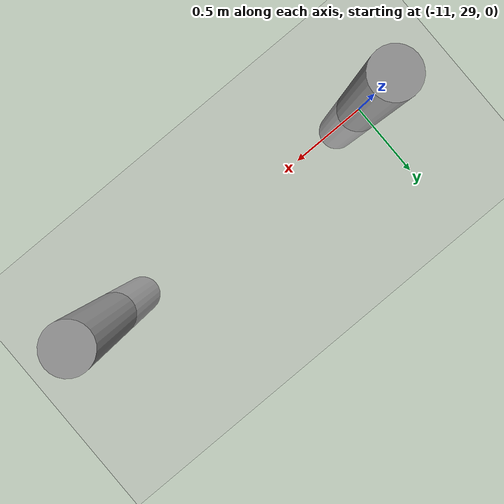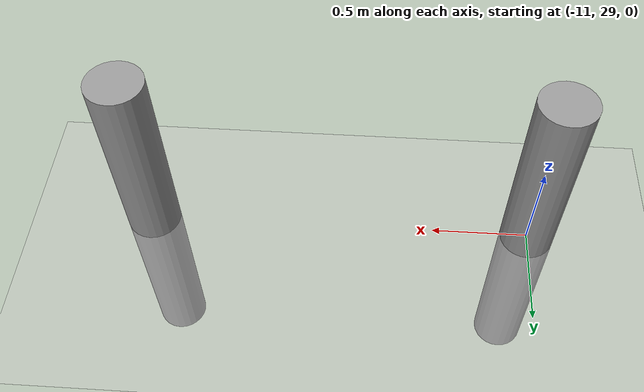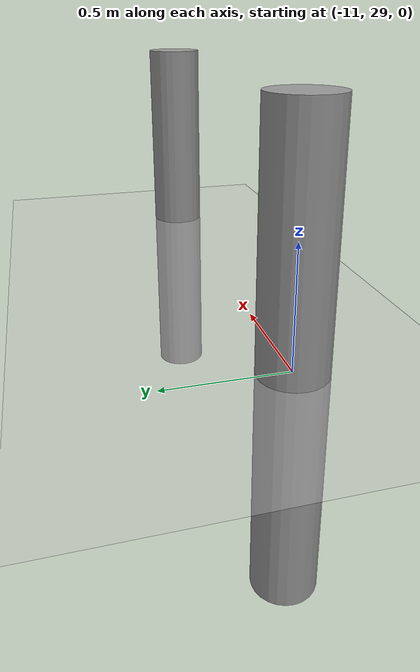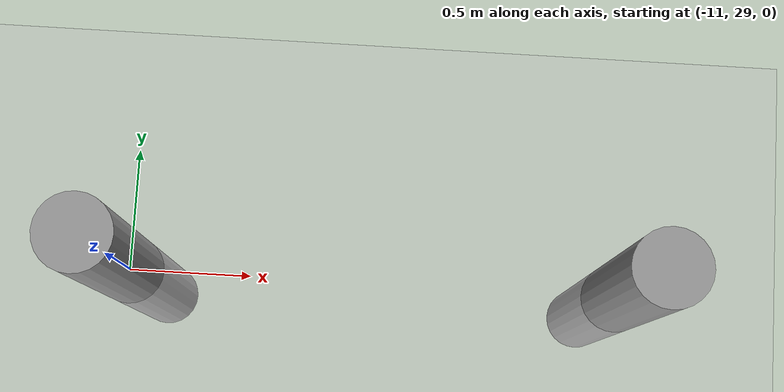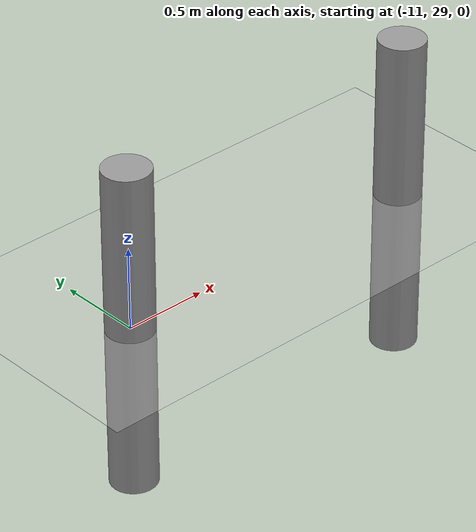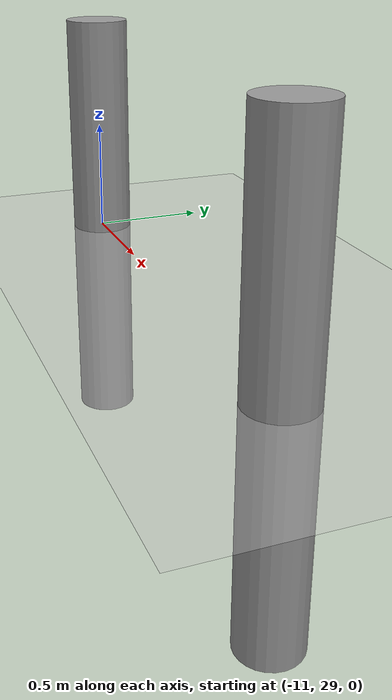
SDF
<sdf version="1.6">
 <world name="default">
  <model name="ground_plane">
   <static>1</static>
   <link name="link">
    <collision name="collision">
     <geometry><plane><normal>0 0 1</normal><size>100 100</size></plane></geometry>
     <surface><friction><ode><mu>100</mu><mu2>50</mu2></ode></friction></surface>
    </collision>
    <visual name="visual">
     <cast_shadows>0</cast_shadows>
     <geometry><plane><normal>0 0 1</normal><size>100 100</size></plane></geometry>
     <material>
      <script><uri>file://media/materials/scripts/gazebo.material</uri><name>Gazebo/Grey</name></script>
     </material>
    </visual>
   </link>
  </model>
  <model name="my_cylinder014_clone_35_0">
   <pose>-9 29 0 0 -0 0</pose>
   <link name="my_cylinder014::link">
    <inertial>
     <mass>1</mass>
     <inertia><ixx>0.145833</ixx><ixy>0</ixy><ixz>0</ixz><iyy>0.145833</iyy><iyz>0</iyz><izz>0.125</izz></inertia>
    </inertial>
    <visual name="visual">
     <geometry><cylinder><radius>0.14</radius><length>2</length></cylinder></geometry>
     <material>
      <script><name>Gazebo/Grey</name><uri>file://media/materials/scripts/gazebo.material</uri></script>
      <ambient>0.3 0.3 0.3 1</ambient>
      <diffuse>0.7 0.7 0.7 1</diffuse>
      <specular>1 0.01 0.01 1</specular>
      <emissive>0 0 0 1</emissive>
      <shader type="vertex"><normal_map>__default__</normal_map></shader>
     </material>
    </visual>
    <collision name="collision">
     <geometry><cylinder><radius>0.14</radius><length>2</length></cylinder></geometry>
     <surface>
      <friction>
       <ode><mu>1</mu><mu2>1</mu2><fdir1>0 0 0</fdir1><slip1>0</slip1><slip2>0</slip2></ode>
       <torsional>
        <coefficient>1</coefficient>
        <patch_radius>0</patch_radius>
        <surface_radius>0</surface_radius>
        <use_patch_radius>1</use_patch_radius>
        <ode><slip>0</slip></ode>
       </torsional>
      </friction>
      <bounce><restitution_coefficient>0</restitution_coefficient><threshold>1e+06</threshold></bounce>
      <contact>
       <collide_without_contact>0</collide_without_contact>
       <collide_without_contact_bitmask>1</collide_without_contact_bitmask>
       <collide_bitmask>1</collide_bitmask>
       <ode>
        <soft_cfm>0</soft_cfm>
        <soft_erp>0.2</soft_erp>
        <kp>1e+13</kp>
        <kd>1</kd>
        <max_vel>0.01</max_vel>
        <min_depth>0</min_depth>
       </ode>
       <bullet>
        <split_impulse>1</split_impulse>
        <split_impulse_penetration_threshold>-0.01</split_impulse_penetration_threshold>
        <soft_cfm>0</soft_cfm>
        <soft_erp>0.2</soft_erp>
        <kp>1e+13</kp>
        <kd>1</kd>
       </bullet>
      </contact>
     </surface>
    </collision>
   </link>
   <static>1</static>
  </model>
  <model name="my_cylinder014_clone_35_0">
   <pose>-9 29 0 0 -0 0</pose>
   <link name="my_cylinder014::link">
    <inertial>
     <mass>1</mass>
     <inertia><ixx>0.145833</ixx><ixy>0</ixy><ixz>0</ixz><iyy>0.145833</iyy><iyz>0</iyz><izz>0.125</izz></inertia>
    </inertial>
    <visual name="visual">
     <geometry><cylinder><radius>0.14</radius><length>2</length></cylinder></geometry>
     <material>
      <script><name>Gazebo/Grey</name><uri>file://media/materials/scripts/gazebo.material</uri></script>
      <ambient>0.3 0.3 0.3 1</ambient>
      <diffuse>0.7 0.7 0.7 1</diffuse>
      <specular>1 0.01 0.01 1</specular>
      <emissive>0 0 0 1</emissive>
      <shader type="vertex"><normal_map>__default__</normal_map></shader>
     </material>
    </visual>
    <collision name="collision">
     <geometry><cylinder><radius>0.14</radius><length>2</length></cylinder></geometry>
     <surface>
      <friction>
       <ode><mu>1</mu><mu2>1</mu2><fdir1>0 0 0</fdir1><slip1>0</slip1><slip2>0</slip2></ode>
       <torsional>
        <coefficient>1</coefficient>
        <patch_radius>0</patch_radius>
        <surface_radius>0</surface_radius>
        <use_patch_radius>1</use_patch_radius>
        <ode><slip>0</slip></ode>
       </torsional>
      </friction>
      <bounce><restitution_coefficient>0</restitution_coefficient><threshold>1e+06</threshold></bounce>
      <contact>
       <collide_without_contact>0</collide_without_contact>
       <collide_without_contact_bitmask>1</collide_without_contact_bitmask>
       <collide_bitmask>1</collide_bitmask>
       <ode>
        <soft_cfm>0</soft_cfm>
        <soft_erp>0.2</soft_erp>
        <kp>1e+13</kp>
        <kd>1</kd>
        <max_vel>0.01</max_vel>
        <min_depth>0</min_depth>
       </ode>
       <bullet>
        <split_impulse>1</split_impulse>
        <split_impulse_penetration_threshold>-0.01</split_impulse_penetration_threshold>
        <soft_cfm>0</soft_cfm>
        <soft_erp>0.2</soft_erp>
        <kp>1e+13</kp>
        <kd>1</kd>
       </bullet>
      </contact>
     </surface>
    </collision>
   </link>
   <static>1</static>
  </model>
  <model name="my_cylinder014_clone_34_1">
   <pose>-11 29 0 0 -0 0</pose>
   <link name="my_cylinder014::link">
    <inertial>
     <mass>1</mass>
     <inertia><ixx>0.145833</ixx><ixy>0</ixy><ixz>0</ixz><iyy>0.145833</iyy><iyz>0</iyz><izz>0.125</izz></inertia>
    </inertial>
    <visual name="visual">
     <geometry><cylinder><radius>0.14</radius><length>2</length></cylinder></geometry>
     <material>
      <script><name>Gazebo/Grey</name><uri>file://media/materials/scripts/gazebo.material</uri></script>
      <ambient>0.3 0.3 0.3 1</ambient>
      <diffuse>0.7 0.7 0.7 1</diffuse>
      <specular>1 0.01 0.01 1</specular>
      <emissive>0 0 0 1</emissive>
      <shader type="vertex"><normal_map>__default__</normal_map></shader>
     </material>
    </visual>
    <collision name="collision">
     <geometry><cylinder><radius>0.14</radius><length>2</length></cylinder></geometry>
     <surface>
      <friction>
       <ode><mu>1</mu><mu2>1</mu2><fdir1>0 0 0</fdir1><slip1>0</slip1><slip2>0</slip2></ode>
       <torsional>
        <coefficient>1</coefficient>
        <patch_radius>0</patch_radius>
        <surface_radius>0</surface_radius>
        <use_patch_radius>1</use_patch_radius>
        <ode><slip>0</slip></ode>
       </torsional>
      </friction>
      <bounce><restitution_coefficient>0</restitution_coefficient><threshold>1e+06</threshold></bounce>
      <contact>
       <collide_without_contact>0</collide_without_contact>
       <collide_without_contact_bitmask>1</collide_without_contact_bitmask>
       <collide_bitmask>1</collide_bitmask>
       <ode>
        <soft_cfm>0</soft_cfm>
        <soft_erp>0.2</soft_erp>
        <kp>1e+13</kp>
        <kd>1</kd>
        <max_vel>0.01</max_vel>
        <min_depth>0</min_depth>
       </ode>
       <bullet>
        <split_impulse>1</split_impulse>
        <split_impulse_penetration_threshold>-0.01</split_impulse_penetration_threshold>
        <soft_cfm>0</soft_cfm>
        <soft_erp>0.2</soft_erp>
        <kp>1e+13</kp>
        <kd>1</kd>
       </bullet>
      </contact>
     </surface>
    </collision>
   </link>
   <static>1</static>
  </model>
 </world>
</sdf>
